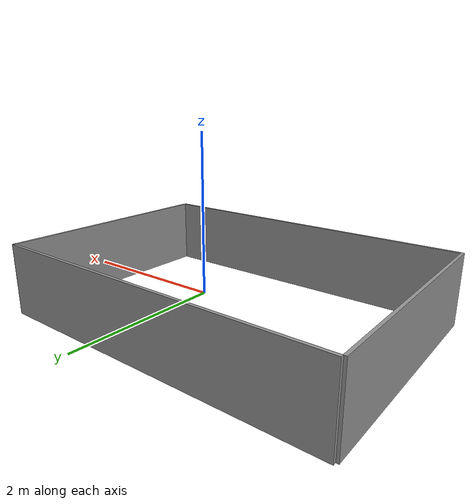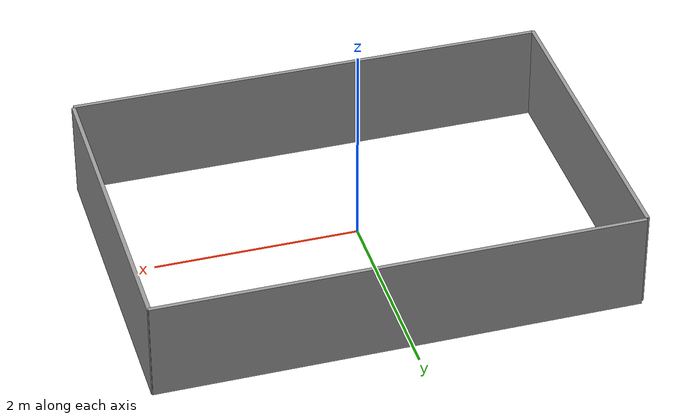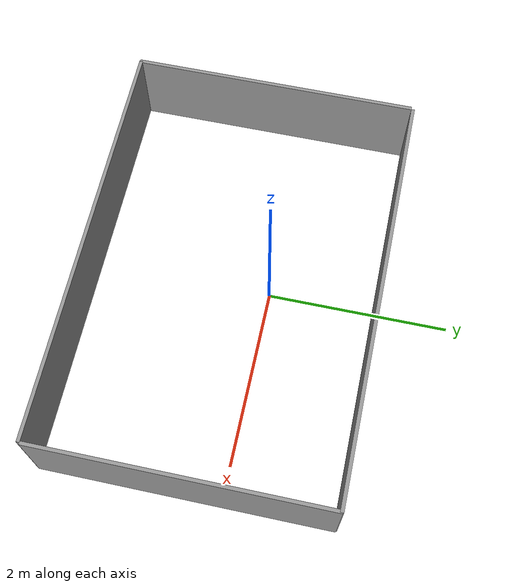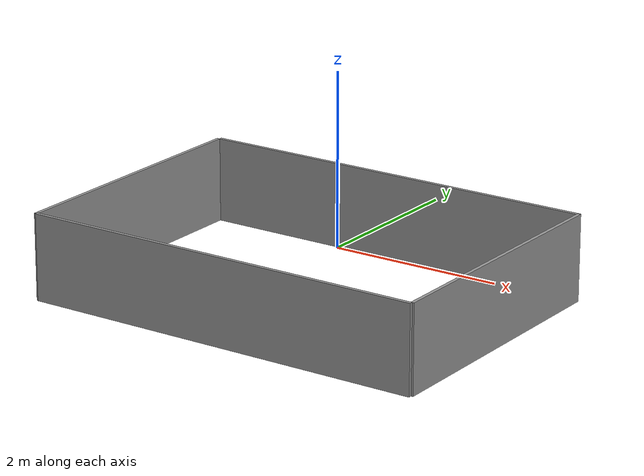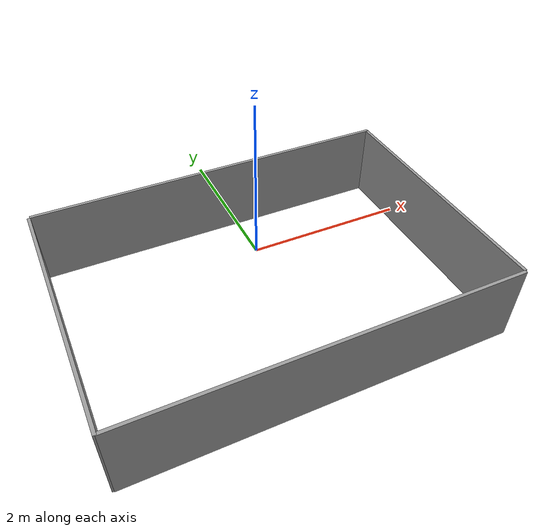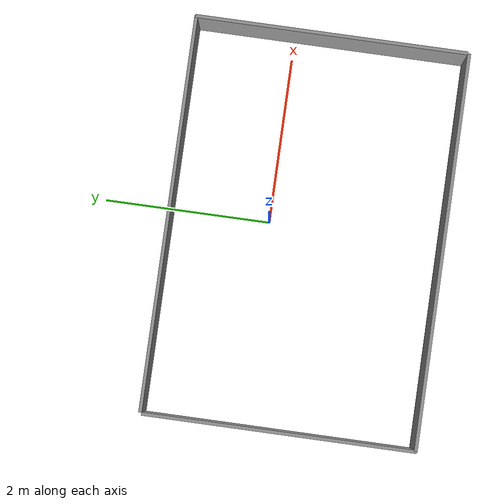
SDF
<?xml version='1.0'?>
<sdf version='1.7'>
  <model name='unit_box_1'>
    <link name='link'>
      <inertial>
        <mass>0.0393327</mass>
        <inertia>
          <ixx>0.00328236</ixx>
          <ixy>0</ixy>
          <ixz>0</ixz>
          <iyy>0.00681182</iyy>
          <iyz>0</iyz>
          <izz>0.00353873</izz>
        </inertia>
        <pose>0 0 0 0 -0 0</pose>
      </inertial>
      <self_collide>0</self_collide>
      <enable_wind>0</enable_wind>
      <kinematic>0</kinematic>
      <pose>-0.076401 1.20631 -0 0 -0 0</pose>
      <gravity>1</gravity>
      <visual name='visual'>
        <geometry>
          <box>
            <size>4.8 0.04 1</size>
          </box>
        </geometry>
        <material>
          <script>
            <name>Gazebo/Grey</name>
            <uri>file://media/materials/scripts/gazebo.material</uri>
          </script>
          <shader type='pixel'>
            <normal_map>__default__</normal_map>
          </shader>
          <ambient>0.3 0.3 0.3 1</ambient>
          <diffuse>0.7 0.7 0.7 1</diffuse>
          <specular>0.01 0.01 0.01 1</specular>
          <emissive>0 0 0 1</emissive>
        </material>
        <pose>0 0 0 0 -0 0</pose>
        <transparency>0</transparency>
        <cast_shadows>1</cast_shadows>
      </visual>
      <collision name='collision_1'>
        <laser_retro>0</laser_retro>
        <max_contacts>10</max_contacts>
        <pose>0 0 0 0 -0 0</pose>
        <geometry>
          <box>
            <size>4.8 0.04 1</size>
          </box>
        </geometry>
        <surface>
          <friction>
            <ode>
              <mu>1</mu>
              <mu2>1</mu2>
              <fdir1>0 0 0</fdir1>
              <slip1>0</slip1>
              <slip2>0</slip2>
            </ode>
            <torsional>
              <coefficient>1</coefficient>
              <patch_radius>0</patch_radius>
              <surface_radius>0</surface_radius>
              <use_patch_radius>1</use_patch_radius>
              <ode>
                <slip>0</slip>
              </ode>
            </torsional>
          </friction>
          <bounce>
            <restitution_coefficient>0</restitution_coefficient>
            <threshold>1e+06</threshold>
          </bounce>
          <contact>
            <collide_without_contact>0</collide_without_contact>
            <collide_without_contact_bitmask>1</collide_without_contact_bitmask>
            <collide_bitmask>1</collide_bitmask>
            <ode>
              <soft_cfm>0</soft_cfm>
              <soft_erp>0.2</soft_erp>
              <kp>1e+13</kp>
              <kd>1</kd>
              <max_vel>0.01</max_vel>
              <min_depth>0</min_depth>
            </ode>
            <bullet>
              <split_impulse>1</split_impulse>
              <split_impulse_penetration_threshold>-0.01</split_impulse_penetration_threshold>
              <soft_cfm>0</soft_cfm>
              <soft_erp>0.2</soft_erp>
              <kp>1e+13</kp>
              <kd>1</kd>
            </bullet>
          </contact>
        </surface>
      </collision>
    </link>
    <link name='link_clone'>
      <inertial>
        <mass>0.0393327</mass>
        <inertia>
          <ixx>0.00328236</ixx>
          <ixy>0</ixy>
          <ixz>0</ixz>
          <iyy>0.00681182</iyy>
          <iyz>0</iyz>
          <izz>0.00353873</izz>
        </inertia>
        <pose>0 0 0 0 -0 0</pose>
      </inertial>
      <self_collide>0</self_collide>
      <enable_wind>0</enable_wind>
      <kinematic>0</kinematic>
      <pose>-0.088192 -2.10048 0 -0 -0 -0</pose>
      <gravity>1</gravity>
      <visual name='visual'>
        <geometry>
          <box>
            <size>4.8 0.04 1</size>
          </box>
        </geometry>
        <material>
          <script>
            <name>Gazebo/Grey</name>
            <uri>file://media/materials/scripts/gazebo.material</uri>
          </script>
          <shader type='pixel'>
            <normal_map>__default__</normal_map>
          </shader>
          <ambient>0.3 0.3 0.3 1</ambient>
          <diffuse>0.7 0.7 0.7 1</diffuse>
          <specular>0.01 0.01 0.01 1</specular>
          <emissive>0 0 0 1</emissive>
        </material>
        <pose>0 0 0 0 -0 0</pose>
        <transparency>0</transparency>
        <cast_shadows>1</cast_shadows>
      </visual>
      <collision name='collision_1'>
        <laser_retro>0</laser_retro>
        <max_contacts>10</max_contacts>
        <pose>0 0 0 0 -0 0</pose>
        <geometry>
          <box>
            <size>4.8 0.04 1</size>
          </box>
        </geometry>
        <surface>
          <friction>
            <ode>
              <mu>1</mu>
              <mu2>1</mu2>
              <fdir1>0 0 0</fdir1>
              <slip1>0</slip1>
              <slip2>0</slip2>
            </ode>
            <torsional>
              <coefficient>1</coefficient>
              <patch_radius>0</patch_radius>
              <surface_radius>0</surface_radius>
              <use_patch_radius>1</use_patch_radius>
              <ode>
                <slip>0</slip>
              </ode>
            </torsional>
          </friction>
          <bounce>
            <restitution_coefficient>0</restitution_coefficient>
            <threshold>1e+06</threshold>
          </bounce>
          <contact>
            <collide_without_contact>0</collide_without_contact>
            <collide_without_contact_bitmask>1</collide_without_contact_bitmask>
            <collide_bitmask>1</collide_bitmask>
            <ode>
              <soft_cfm>0</soft_cfm>
              <soft_erp>0.2</soft_erp>
              <kp>1e+13</kp>
              <kd>1</kd>
              <max_vel>0.01</max_vel>
              <min_depth>0</min_depth>
            </ode>
            <bullet>
              <split_impulse>1</split_impulse>
              <split_impulse_penetration_threshold>-0.01</split_impulse_penetration_threshold>
              <soft_cfm>0</soft_cfm>
              <soft_erp>0.2</soft_erp>
              <kp>1e+13</kp>
              <kd>1</kd>
            </bullet>
          </contact>
        </surface>
      </collision>
    </link>
    <link name='link_clone_0'>
      <inertial>
        <mass>0.0393327</mass>
        <inertia>
          <ixx>0.00328236</ixx>
          <ixy>0</ixy>
          <ixz>0</ixz>
          <iyy>0.00681182</iyy>
          <iyz>0</iyz>
          <izz>0.00353873</izz>
        </inertia>
        <pose>0 0 0 0 -0 0</pose>
      </inertial>
      <self_collide>0</self_collide>
      <enable_wind>0</enable_wind>
      <kinematic>0</kinematic>
      <pose>-2.48963 -0.462556 -0 0 -0 1.5708</pose>
      <gravity>1</gravity>
      <visual name='visual'>
        <geometry>
          <box>
            <size>3.3 0.04 1</size>
          </box>
        </geometry>
        <material>
          <script>
            <name>Gazebo/Grey</name>
            <uri>file://media/materials/scripts/gazebo.material</uri>
          </script>
          <shader type='pixel'>
            <normal_map>__default__</normal_map>
          </shader>
          <ambient>0.3 0.3 0.3 1</ambient>
          <diffuse>0.7 0.7 0.7 1</diffuse>
          <specular>0.01 0.01 0.01 1</specular>
          <emissive>0 0 0 1</emissive>
        </material>
        <pose>0 0 0 0 -0 0</pose>
        <transparency>0</transparency>
        <cast_shadows>1</cast_shadows>
      </visual>
      <collision name='collision_3'>
        <laser_retro>0</laser_retro>
        <max_contacts>10</max_contacts>
        <pose>0 0 0 0 -0 0</pose>
        <geometry>
          <box>
            <size>3.3 0.04 1</size>
          </box>
        </geometry>
        <surface>
          <friction>
            <ode>
              <mu>1</mu>
              <mu2>1</mu2>
              <fdir1>0 0 0</fdir1>
              <slip1>0</slip1>
              <slip2>0</slip2>
            </ode>
            <torsional>
              <coefficient>1</coefficient>
              <patch_radius>0</patch_radius>
              <surface_radius>0</surface_radius>
              <use_patch_radius>1</use_patch_radius>
              <ode>
                <slip>0</slip>
              </ode>
            </torsional>
          </friction>
          <bounce>
            <restitution_coefficient>0</restitution_coefficient>
            <threshold>1e+06</threshold>
          </bounce>
          <contact>
            <collide_without_contact>0</collide_without_contact>
            <collide_without_contact_bitmask>1</collide_without_contact_bitmask>
            <collide_bitmask>1</collide_bitmask>
            <ode>
              <soft_cfm>0</soft_cfm>
              <soft_erp>0.2</soft_erp>
              <kp>1e+13</kp>
              <kd>1</kd>
              <max_vel>0.01</max_vel>
              <min_depth>0</min_depth>
            </ode>
            <bullet>
              <split_impulse>1</split_impulse>
              <split_impulse_penetration_threshold>-0.01</split_impulse_penetration_threshold>
              <soft_cfm>0</soft_cfm>
              <soft_erp>0.2</soft_erp>
              <kp>1e+13</kp>
              <kd>1</kd>
            </bullet>
          </contact>
        </surface>
      </collision>
    </link>
    <link name='link_clone_0_clone'>
      <inertial>
        <mass>0.0393327</mass>
        <inertia>
          <ixx>0.00328236</ixx>
          <ixy>0</ixy>
          <ixz>0</ixz>
          <iyy>0.00681182</iyy>
          <iyz>0</iyz>
          <izz>0.00353873</izz>
        </inertia>
        <pose>0 0 0 0 -0 0</pose>
      </inertial>
      <self_collide>0</self_collide>
      <enable_wind>0</enable_wind>
      <kinematic>0</kinematic>
      <pose>2.31492 -0.434591 0 0 -0 1.5708</pose>
      <gravity>1</gravity>
      <visual name='visual'>
        <geometry>
          <box>
            <size>3.3 0.04 1</size>
          </box>
        </geometry>
        <material>
          <script>
            <name>Gazebo/Grey</name>
            <uri>file://media/materials/scripts/gazebo.material</uri>
          </script>
          <shader type='pixel'>
            <normal_map>__default__</normal_map>
          </shader>
          <ambient>0.3 0.3 0.3 1</ambient>
          <diffuse>0.7 0.7 0.7 1</diffuse>
          <specular>0.01 0.01 0.01 1</specular>
          <emissive>0 0 0 1</emissive>
        </material>
        <pose>0 0 0 0 -0 0</pose>
        <transparency>0</transparency>
        <cast_shadows>1</cast_shadows>
      </visual>
      <collision name='collision_3'>
        <laser_retro>0</laser_retro>
        <max_contacts>10</max_contacts>
        <pose>0 0 0 0 -0 0</pose>
        <geometry>
          <box>
            <size>3.3 0.04 1</size>
          </box>
        </geometry>
        <surface>
          <friction>
            <ode>
              <mu>1</mu>
              <mu2>1</mu2>
              <fdir1>0 0 0</fdir1>
              <slip1>0</slip1>
              <slip2>0</slip2>
            </ode>
            <torsional>
              <coefficient>1</coefficient>
              <patch_radius>0</patch_radius>
              <surface_radius>0</surface_radius>
              <use_patch_radius>1</use_patch_radius>
              <ode>
                <slip>0</slip>
              </ode>
            </torsional>
          </friction>
          <bounce>
            <restitution_coefficient>0</restitution_coefficient>
            <threshold>1e+06</threshold>
          </bounce>
          <contact>
            <collide_without_contact>0</collide_without_contact>
            <collide_without_contact_bitmask>1</collide_without_contact_bitmask>
            <collide_bitmask>1</collide_bitmask>
            <ode>
              <soft_cfm>0</soft_cfm>
              <soft_erp>0.2</soft_erp>
              <kp>1e+13</kp>
              <kd>1</kd>
              <max_vel>0.01</max_vel>
              <min_depth>0</min_depth>
            </ode>
            <bullet>
              <split_impulse>1</split_impulse>
              <split_impulse_penetration_threshold>-0.01</split_impulse_penetration_threshold>
              <soft_cfm>0</soft_cfm>
              <soft_erp>0.2</soft_erp>
              <kp>1e+13</kp>
              <kd>1</kd>
            </bullet>
          </contact>
        </surface>
      </collision>
    </link>
    <static>0</static>
    <allow_auto_disable>1</allow_auto_disable>
  </model>
</sdf>
